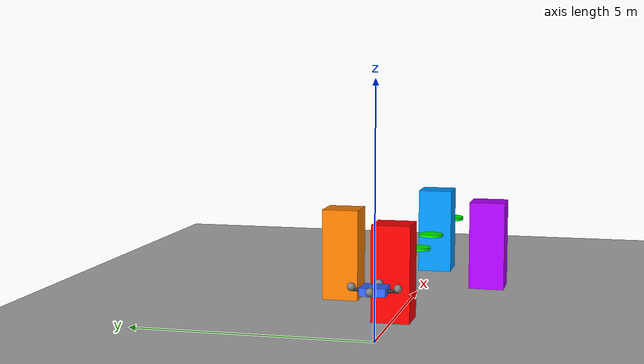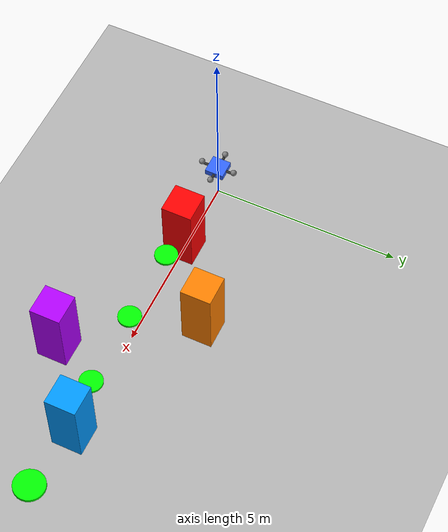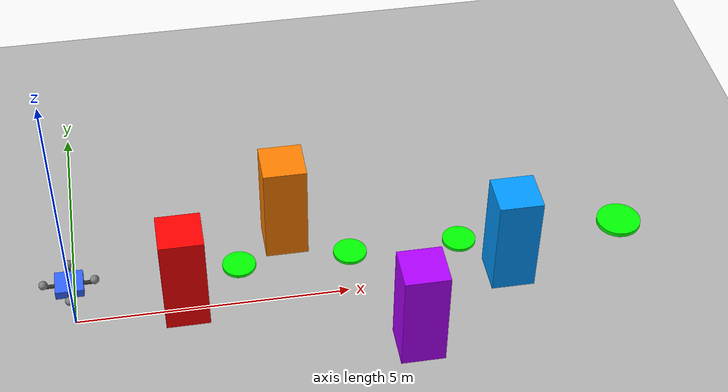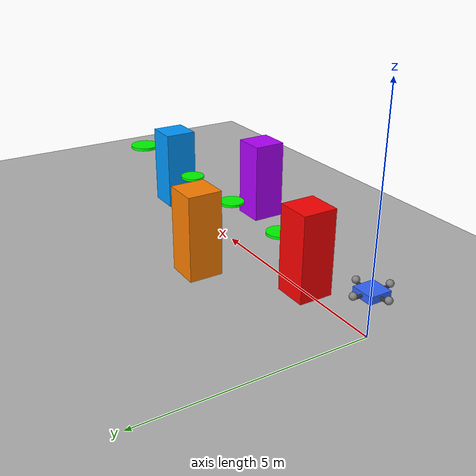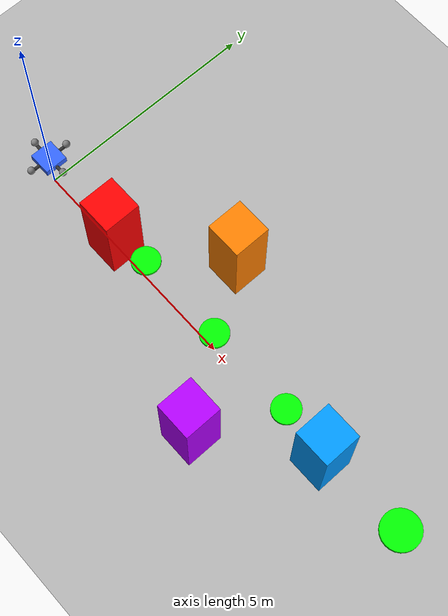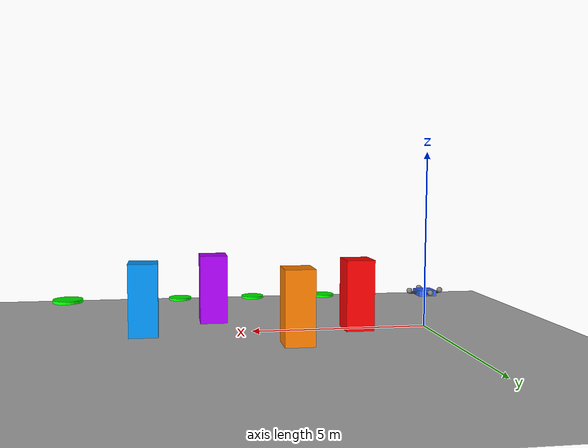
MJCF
<mujoco model="autonomous_drone_multi_obstacle">

    <compiler angle="degree" coordinate="local"/>
    <option timestep="0.002" gravity="0 0 -9.81"/>

    <visual>
        <headlight ambient="0.5 0.5 0.5"
                   diffuse="0.8 0.8 0.8"
                   specular="0.1 0.1 0.1"/>
    </visual>

    <worldbody>

        <!-- Ground -->
        <geom name="ground"
              type="plane"
              size="20 20 0.1"
              pos="0 0 0"
              rgba="0.7 0.7 0.7 1"/>

        <!-- Drone -->
        <body name="drone" pos="0 0 1">
            <freejoint name="drone_free"/>

            <geom name="body"
                  type="box"
                  size="0.25 0.25 0.08"
                  mass="1.0"
                  rgba="0.2 0.4 1 1"/>

            <!-- Four arms -->
            <geom name="arm_front"
                  type="capsule"
                  fromto="0 0 0 0.45 0 0"
                  size="0.035"
                  mass="0"
                  rgba="0.2 0.2 0.2 1"/>

            <geom name="arm_back"
                  type="capsule"
                  fromto="0 0 0 -0.45 0 0"
                  size="0.035"
                  mass="0"
                  rgba="0.2 0.2 0.2 1"/>

            <geom name="arm_left"
                  type="capsule"
                  fromto="0 0 0 0 0.45 0"
                  size="0.035"
                  mass="0"
                  rgba="0.2 0.2 0.2 1"/>

            <geom name="arm_right"
                  type="capsule"
                  fromto="0 0 0 0 -0.45 0"
                  size="0.035"
                  mass="0"
                  rgba="0.2 0.2 0.2 1"/>

            <!-- Rotor sites -->
            <site name="rotor_1" pos="0.45 0 0.05" size="0.08"/>
            <site name="rotor_2" pos="-0.45 0 0.05" size="0.08"/>
            <site name="rotor_3" pos="0 0.45 0.05" size="0.08"/>
            <site name="rotor_4" pos="0 -0.45 0.05" size="0.08"/>

        </body>

        <!-- Obstacle 1 -->
        <geom name="obstacle_1"
              type="box"
              pos="2 0 1"
              size="0.4 0.4 1"
              rgba="1 0 0 1"
              contype="1"
              conaffinity="1"/>

        <!-- Obstacle 2 -->
        <geom name="obstacle_2"
              type="box"
              pos="4 1.5 1"
              size="0.4 0.4 1"
              rgba="1 0.5 0 1"
              contype="1"
              conaffinity="1"/>

        <!-- Obstacle 3 -->
        <geom name="obstacle_3"
              type="box"
              pos="6 -1.5 1"
              size="0.4 0.4 1"
              rgba="0.7 0 1 1"
              contype="1"
              conaffinity="1"/>

        <!-- Obstacle 4 -->
        <geom name="obstacle_4"
              type="box"
              pos="8 0 1"
              size="0.4 0.4 1"
              rgba="0 0.6 1 1"
              contype="1"
              conaffinity="1"/>

        <!-- Target markers -->
        <site name="target_1"
              type="cylinder"
              pos="3 0 1"
              size="0.3 0.03"
              rgba="0 1 0 1"/>

        <site name="target_2"
              type="cylinder"
              pos="5 0 1"
              size="0.3 0.03"
              rgba="0 1 0 1"/>

        <site name="target_3"
              type="cylinder"
              pos="7 0 1"
              size="0.3 0.03"
              rgba="0 1 0 1"/>

        <site name="target_final"
              type="cylinder"
              pos="10 0 1"
              size="0.4 0.04"
              rgba="0 1 0 1"/>

        <!-- Camera -->
        <camera name="main_camera"
                pos="6 -6 4"
                xyaxes="0.707 0.707 0 -0.25 0.25 0.935"/>

        <!-- Light -->
        <light name="sun"
               pos="0 0 8"
               dir="0 0 -1"/>

    </worldbody>
</mujoco>
